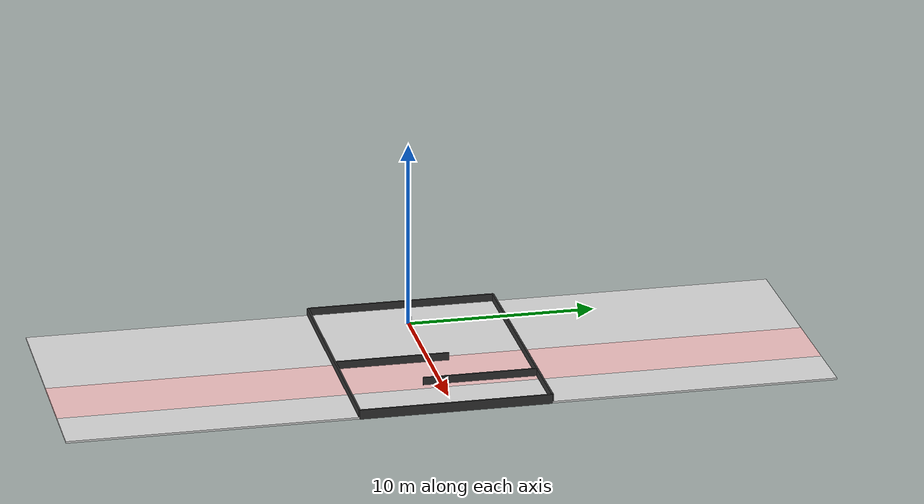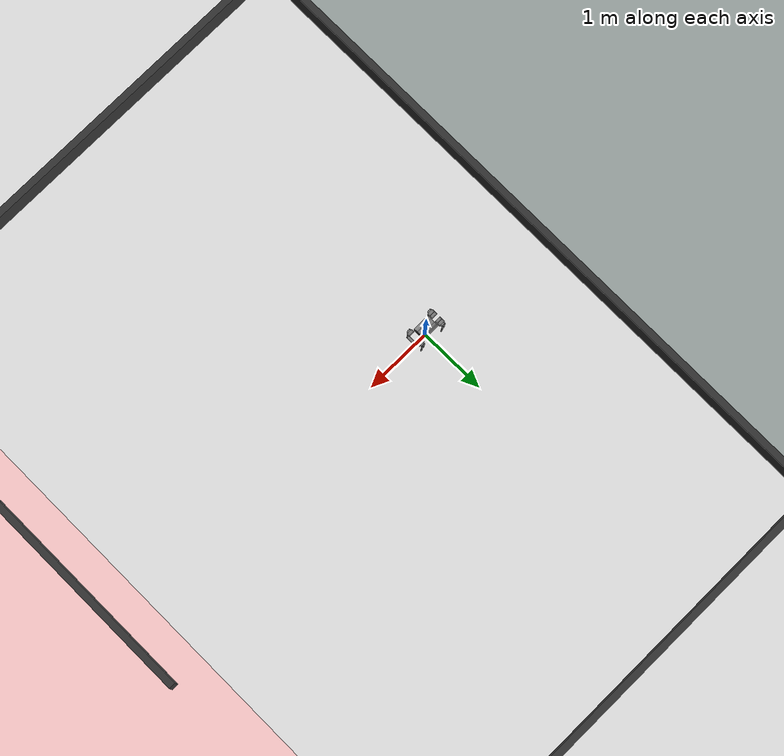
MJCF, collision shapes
<mujoco model="scene">

    <include file="/Users/shuangpeng/Desktop/Quadruped-PyMPC/quadruped_pympc/gym_quadruped_mod/robot_model/go1/go1.xml" /><statistic center="0 0 0.1" extent="0.8" />

    <visual>
        <headlight diffuse="0 0 0" ambient="0.3 0.3 0.3" specular="0 0 0" />
        <rgba haze="0.99 0.99 0.99 1" />
        <global azimuth="90" elevation="-90"
            offwidth="3840" offheight="2160"/>
    </visual>

    <asset>
        <texture type="skybox" builtin="gradient" rgb1="0.99 0.99 0.99" rgb2="0.99 0.99 0.99" width="512" height="3072" />
        <texture type="2d" name="groundplane" builtin="checker" mark="edge" rgb1="0.93 0.93 0.93" rgb2="1.0 1.0 1.0" markrgb="1 1 1" width="200" height="200" />
        <material name="groundplane" texture="groundplane" texuniform="true" texrepeat="5 5" reflectance="0.05" />
        <material name="boxmat" rgba="0.2 0.2 0.2 1"/>

        <material name="ground_default"  rgba="0.9 0.9 0.9 1"/>
        <material name="ground_lowfric" rgba="1.0 0.8 0.8 1"/>
    </asset>

    <worldbody>

      <camera name="top_down" mode="fixed"
            pos="5 0 14"
            euler="0 0 0"/>

      <geom name="floor_left" type="box"
            pos="1.5 0 0.05"
            size="3.5 20 0.05"
            euler="0 0 0"
            material="ground_default"
            priority="10"
            solimp="0.015 1 0.031"
            friction="1.0 1.0 0.015"/>

      <geom name="floor_middle" type="box"
            pos="7 0 0.05"
            size="2 20 0.05"
            euler="0 0 0"
            material="ground_lowfric"
            priority="10"
            solimp="0.015 1 0.031"
            friction="0.5 0.5 0.015"/>

      <geom name="floor_right" type="box"
            pos="10.5 0 0.05"
            size="1.5 20 0.05"
            euler="0 0 0"
            material="ground_default"
            priority="10"
            solimp="0.015 1 0.031"
            friction="1.0 1.0 0.015"/>

      <geom name="W1" type="box"
            pos="-2 0 0.25"
            size="0.05 5 0.25"
            euler="0 0 0"
            material="boxmat"/>
      <geom name="W2" type="box"
            pos="12 0 0.25"
            size="0.05 5 0.25"
            euler="0 0 0"
            material="boxmat"/>

        <geom name="W3" type="box"
              pos="5 -5 0.25"
              size="7    0.05 0.25"
              euler="0 0 0"
              material="boxmat"/>
        <geom name="W4" type="box"
              pos="5 5 0.25"
              size="7    0.05 0.25"
              euler="0 0 0"
              material="boxmat"/>

        <geom name="OBST1" type="box"
              pos="5.5 -2.0 0.25"
              size="3    0.05 0.25"
              euler="0 0 1.5708"
              material="boxmat"/>
        <geom name="OBST2" type="box"
              pos="8.5 2.0 0.25"
              size="3    0.05 0.25"
              euler="0 0 1.5708"
              material="boxmat"/>

    </worldbody>

</mujoco>

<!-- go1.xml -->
<mujoco model="go1">
    <compiler angle="radian" meshdir="assets" autolimits="true"/>

    <option cone="elliptic" impratio="100"/>

    <default>
        <default class="go1">
            <geom friction="0.6" margin="0.001" condim="1"/>
            <joint axis="0 1 0" damping="0.6" armature="0.01" frictionloss="0.2"/>
            <position kp="100" forcerange="-23.7 23.7"/>
            <default class="abduction">
                <joint axis="1 0 0" damping="1" range="-0.863 0.863"/>
                <motor ctrlrange="-45.43 45.43"/>
            </default>
            <default class="hip">
                <joint range="-0.686 4.501"/>
                <motor ctrlrange="-45.43 45.43"/>
            </default>
            <default class="knee">
                <joint range="-2.818 -0.888"/>
                <motor ctrlrange="-45.43 45.43"/>
            </default>
            <default class="visual">
                <geom type="mesh" contype="0" conaffinity="0" group="2" material="dark"/>
            </default>
            <default class="collision">
                <geom group="3" type="capsule"/>
                <default class="hip_left1">
                    <geom size="0.046 0.02" pos="0 0.045 0" quat="1 1 0 0" type="cylinder"/>
                </default>
                <default class="hip_left2">
                    <geom size="0.031 0.02" pos="0 0.065 0" quat="1 1 0 0" type="cylinder"/>
                </default>
                <default class="hip_left3">
                    <geom size="0.046 0.02" quat="1 1 0 0" type="cylinder"/>
                </default>
                <default class="hip_right1">
                    <geom size="0.046 0.02" pos="0 -0.045 0" quat="1 1 0 0" type="cylinder"/>
                </default>
                <default class="hip_right2">
                    <geom size="0.031 0.02" pos="0 -0.065 0" quat="1 1 0 0" type="cylinder"/>
                </default>
                <default class="hip_right3">
                    <geom size="0.046 0.02" quat="1 1 0 0" type="cylinder"/>
                </default>
                <default class="thigh1">
                    <geom size="0.015" fromto="-0.02 0 0 -0.02 0 -0.16"/>
                </default>
                <default class="thigh2">
                    <geom size="0.015" fromto="0 0 0 -0.02 0 -0.1"/>
                </default>
                <default class="thigh3">
                    <geom size="0.015" fromto="-0.02 0 -0.16 0 0 -0.2"/>
                </default>
                <default class="calf1">
                    <geom size="0.01" fromto="0 0 0 0.02 0 -0.13"/>
                </default>
                <default class="calf2">
                    <geom size="0.01" fromto="0.02 0 -0.13 0 0 -0.2"/>
                </default>
                <default class="foot">
                    <geom type="sphere" size="0.023" pos="0 0 -0.213" priority="1" solimp="0.015 1 0.031" condim="6"
                          friction="0.8 0.06 0.015"/>
                </default>
            </default>
        </default>
    </default>

    <asset>
        <material name="dark" rgba="0.1 0.1 0.1 1"/>
        <mesh class="go1" file="assets/trunk.stl"/>
        <mesh class="go1" file="assets/hip.stl"/>
        <mesh class="go1" file="assets/thigh_mirror.stl"/>
        <mesh class="go1" file="assets/calf.stl"/>
        <mesh class="go1" file="assets/thigh.stl"/>
    </asset>

    <worldbody>
        <light name="spotlight" mode="targetbodycom" target="trunk" pos="0 -1 200"/>
        <body name="trunk" pos="0 0 0.445" childclass="go1">
            <camera name="tracking" mode="trackcom" pos="0 -1 0.8" xyaxes="1 0 0 0 1 1"/>
            <site name="head" pos="0.3 0 0" rgba="1 0 0 1" size="0.02" group="5"/>
            <inertial pos="0.0223 0.002 -0.0005" quat="-0.00342088 0.705204 0.000106698 0.708996" mass="5.204"
                      diaginertia="0.0716565 0.0630105 0.0168101"/>
            <freejoint/>
            <geom class="visual" mesh="trunk"/>
            <geom class="collision" size="0.125 0.04 0.057" type="box"/>
            <geom class="collision" quat="1 0 1 0" pos="0 -0.04 0" size="0.058 0.125" type="cylinder"/>
            <geom class="collision" quat="1 0 1 0" pos="0 +0.04 0" size="0.058 0.125" type="cylinder"/>
            <geom class="collision" pos="0.25 0 0" size="0.005 0.06 0.05" type="box"/>
            <geom class="collision" pos="0.25 0.06 -0.01" size="0.009 0.035"/>
            <geom class="collision" pos="0.25 -0.06 -0.01" size="0.009 0.035"/>
            <geom class="collision" pos="0.25 0 -0.05" size="0.01 0.06" quat="1 1 0 0"/>
            <geom class="collision" pos="0.255 0 0.0355" size="0.021 0.052" quat="1 1 0 0"/>
            <site name="imu" pos="0 0 0"/>
            <body name="FL_hip" pos="0.1881 0.04675 0">
                <inertial pos="-0.0049166 -0.00762615 -8.865e-05" quat="0.482891 0.495027 0.514169 0.507341" mass="0.68"
                          diaginertia="0.000734064 0.000468438 0.000398719"/>
                <joint class="abduction" name="FL_hip_joint"/>
                <geom class="visual" mesh="hip"/>
                <geom class="hip_left1"/>
                <geom class="hip_left2"/>
                <body name="FL_thigh" pos="0 0.08 0">
                    <inertial pos="-0.00304722 -0.019315 -0.0305004" quat="0.753383 0.0775126 -0.0272313 0.65243"
                              mass="1.009"
                              diaginertia="0.00478717 0.00460903 0.000709268"/>
                    <joint class="hip" name="FL_thigh_joint"/>
                    <geom class="visual" mesh="thigh"/>
                    <geom class="thigh1"/>
                    <geom class="thigh2"/>
                    <geom class="thigh3"/>
                    <body name="FL_calf" pos="0 0 -0.213">
                        <inertial pos="0.00429862 0.000976676 -0.146197" quat="0.691246 0.00357467 0.00511118 0.722592"
                                  mass="0.195862" diaginertia="0.00149767 0.00148468 3.58427e-05"/>
                        <joint class="knee" name="FL_calf_joint"/>
                        <geom class="visual" mesh="calf"/>
                        <geom class="calf1"/>
                        <geom class="calf2"/>
                        <geom name="FL" class="foot"/>
                        <site name="FL" pos="0 0 -0.213" type="sphere" size="0.023" group="5"/>
                    </body>
                </body>
            </body>

            <body name="FR_hip" pos="0.1881 -0.04675 0">
                <inertial pos="-0.0049166 0.00762615 -8.865e-05" quat="0.507341 0.514169 0.495027 0.482891" mass="0.68"
                          diaginertia="0.000734064 0.000468438 0.000398719"/>
                <joint class="abduction" name="FR_hip_joint"/>
                <geom class="visual" mesh="hip" quat="1 0 0 0"/>
                <geom class="hip_right1"/>
                <geom class="hip_right2"/>
                <body name="FR_thigh" pos="0 -0.08 0">
                    <inertial pos="-0.00304722 0.019315 -0.0305004" quat="0.65243 -0.0272313 0.0775126 0.753383"
                              mass="1.009"
                              diaginertia="0.00478717 0.00460903 0.000709268"/>
                    <joint class="hip" name="FR_thigh_joint"/>
                    <geom class="visual" mesh="thigh_mirror"/>
                    <geom class="thigh1"/>
                    <geom class="thigh2"/>
                    <geom class="thigh3"/>
                    <body name="FR_calf" pos="0 0 -0.213">
                        <inertial pos="0.00429862 0.000976676 -0.146197" quat="0.691246 0.00357467 0.00511118 0.722592"
                                  mass="0.195862" diaginertia="0.00149767 0.00148468 3.58427e-05"/>
                        <joint class="knee" name="FR_calf_joint"/>
                        <geom class="visual" mesh="calf"/>
                        <geom class="calf1"/>
                        <geom class="calf2"/>
                        <geom name="FR" class="foot"/>
                        <site name="FR" pos="0 0 -0.213" type="sphere" size="0.023" group="5"/>
                    </body>
                </body>
            </body>

            <body name="RL_hip" pos="-0.1881 0.04675 0">
                <inertial pos="0.0049166 -0.00762615 -8.865e-05" quat="0.514169 0.507341 0.482891 0.495027" mass="0.68"
                          diaginertia="0.000734064 0.000468438 0.000398719"/>
                <joint class="abduction" name="RL_hip_joint"/>
                <geom class="visual" quat="0 0 1 0" mesh="hip"/>
                <geom class="hip_left1"/>
                <geom class="hip_left2"/>
                <geom class="hip_left3"/>
                <body name="RL_thigh" pos="0 0.08 0">
                    <inertial pos="-0.00304722 -0.019315 -0.0305004" quat="0.753383 0.0775126 -0.0272313 0.65243"
                              mass="1.009"
                              diaginertia="0.00478717 0.00460903 0.000709268"/>
                    <joint class="hip" name="RL_thigh_joint"/>
                    <geom class="visual" mesh="thigh"/>
                    <geom class="thigh1"/>
                    <geom class="thigh2"/>
                    <geom class="thigh3"/>
                    <body name="RL_calf" pos="0 0 -0.213">
                        <inertial pos="0.00429862 0.000976676 -0.146197" quat="0.691246 0.00357467 0.00511118 0.722592"
                                  mass="0.195862" diaginertia="0.00149767 0.00148468 3.58427e-05"/>
                        <joint class="knee" name="RL_calf_joint"/>
                        <geom class="visual" mesh="calf"/>
                        <geom class="calf1"/>
                        <geom class="calf2"/>
                        <geom name="RL" class="foot"/>
                        <site name="RL" pos="0 0 -0.213" type="sphere" size="0.023" group="5"/>
                    </body>
                </body>
            </body>

            <body name="RR_hip" pos="-0.1881 -0.04675 0">
                <inertial pos="0.0049166 0.00762615 -8.865e-05" quat="0.495027 0.482891 0.507341 0.514169" mass="0.68"
                          diaginertia="0.000734064 0.000468438 0.000398719"/>
                <joint class="abduction" name="RR_hip_joint"/>
                <geom class="visual" quat="0 0 0 -1" mesh="hip"/>
                <geom class="hip_right1"/>
                <geom class="hip_right2"/>
                <geom class="hip_right3"/>
                <body name="RR_thigh" pos="0 -0.08 0">
                    <inertial pos="-0.00304722 0.019315 -0.0305004" quat="0.65243 -0.0272313 0.0775126 0.753383"
                              mass="1.009"
                              diaginertia="0.00478717 0.00460903 0.000709268"/>
                    <joint class="hip" name="RR_thigh_joint"/>
                    <geom class="visual" mesh="thigh_mirror"/>
                    <geom class="thigh1"/>
                    <geom class="thigh2"/>
                    <geom class="thigh3"/>
                    <body name="RR_calf" pos="0 0 -0.213">
                        <inertial pos="0.00429862 0.000976676 -0.146197" quat="0.691246 0.00357467 0.00511118 0.722592"
                                  mass="0.195862" diaginertia="0.00149767 0.00148468 3.58427e-05"/>
                        <joint class="knee" name="RR_calf_joint"/>
                        <geom class="visual" mesh="calf"/>
                        <geom class="calf1"/>
                        <geom class="calf2"/>
                        <geom name="RR" class="foot"/>
                        <site name="RR" pos="0 0 -0.213" type="sphere" size="0.023" group="5"/>
                    </body>
                </body>
            </body>
        </body>
    </worldbody>

    <actuator>
        <motor class="abduction" name="FL_hip" joint="FL_hip_joint"/>
        <motor class="hip" name="FL_thigh" joint="FL_thigh_joint"/>
        <motor class="knee" name="FL_calf" joint="FL_calf_joint"/>
         <motor class="abduction" name="FR_hip" joint="FR_hip_joint"/>
        <motor class="hip" name="FR_thigh" joint="FR_thigh_joint"/>
        <motor class="knee" name="FR_calf" joint="FR_calf_joint"/>
        <motor class="abduction" name="RL_hip" joint="RL_hip_joint"/>
        <motor class="hip" name="RL_thigh" joint="RL_thigh_joint"/>
        <motor class="knee" name="RL_calf" joint="RL_calf_joint"/>
        <motor class="abduction" name="RR_hip" joint="RR_hip_joint"/>
        <motor class="hip" name="RR_thigh" joint="RR_thigh_joint"/>
        <motor class="knee" name="RR_calf" joint="RR_calf_joint"/>
    </actuator>

    <keyframe>
        <key name="home" qpos="0 0 0.27 1 0 0 0 0 0.9 -1.8 0 0.9 -1.8 0 0.9 -1.8 0 0.9 -1.8"
             ctrl="0 0.9 -1.8 0 0.9 -1.8 0 0.9 -1.8 0 0.9 -1.8"/>
    </keyframe>
</mujoco>
